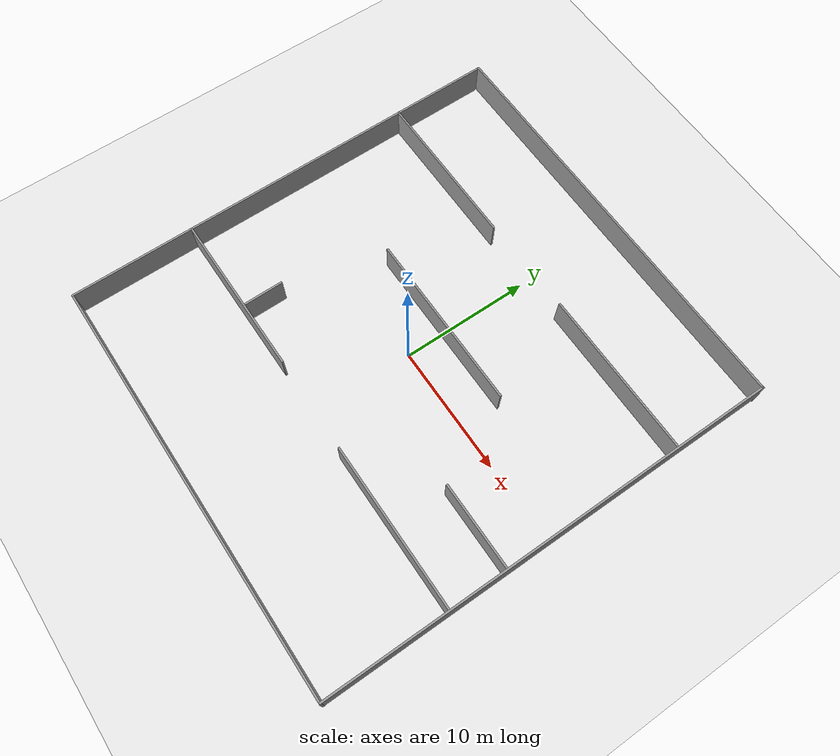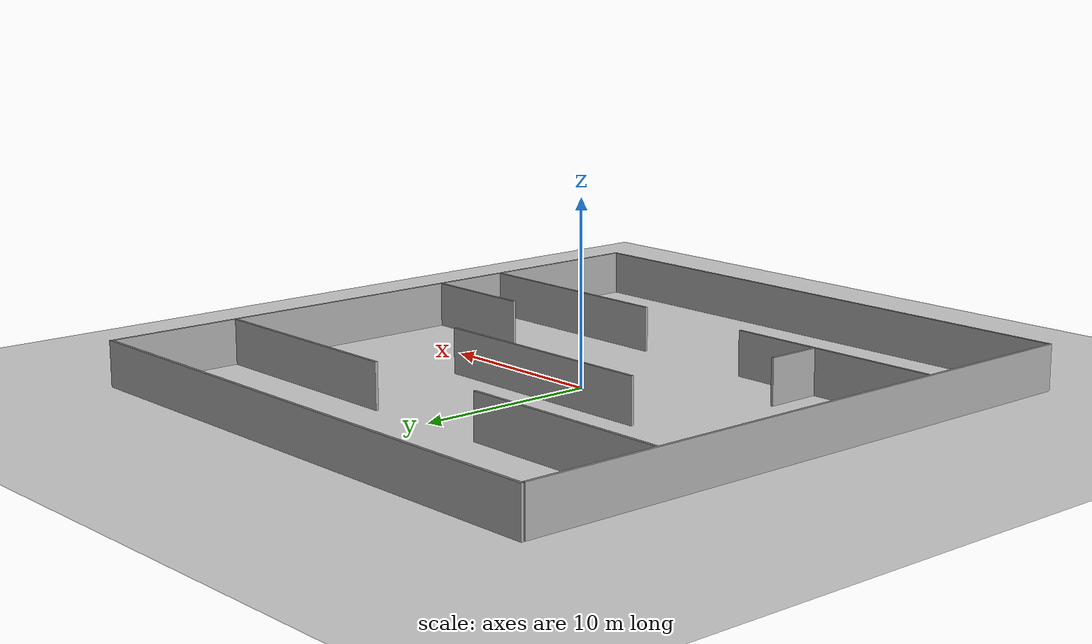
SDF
<sdf version="1.6">
 <world name="default">
  <light name="sun" type="directional">
   <pose>0 0 10 0 -0 0</pose>
   <diffuse>0.8 0.8 0.8 1</diffuse>
   <specular>0.1 0.1 0.1 1</specular>
   <attenuation>
    <range>1000</range>
    <constant>0.9</constant>
    <linear>0.01</linear>
    <quadratic>0.001</quadratic>
   </attenuation>
   <direction>-0.5 0.5 -1</direction>
   <spot><inner_angle>0</inner_angle><outer_angle>0</outer_angle><falloff>0</falloff></spot>
  </light>
  <model name="ground_plane">
   <static>1</static>
   <link name="link">
    <collision name="collision">
     <geometry><plane><normal>0 0 1</normal><size>100 100</size></plane></geometry>
     <surface><friction><ode><mu>100</mu><mu2>50</mu2></ode></friction></surface>
    </collision>
    <visual name="visual">
     <cast_shadows>0</cast_shadows>
     <geometry><plane><normal>0 0 1</normal><size>100 100</size></plane></geometry>
     <material>
      <script><uri>file://media/materials/scripts/gazebo.material</uri><name>Gazebo/White</name></script>
     </material>
    </visual>
   </link>
  </model>
  <gravity>0 0 -9.8</gravity>
  <magnetic_field>6e-06 2.3e-05 -4.2e-05</magnetic_field>
  <atmosphere type="adiabatic"/>
  <physics name="default_physics" default="0" type="ode">
   <max_step_size>0.001</max_step_size>
   <real_time_factor>1</real_time_factor>
   <real_time_update_rate>1000</real_time_update_rate>
  </physics>
  <scene><ambient>0.4 0.4 0.4 1</ambient><background>0.7 0.7 0.7 1</background><shadows>1</shadows></scene>
  <spherical_coordinates>
   <surface_model>EARTH_WGS84</surface_model>
   <latitude_deg>0</latitude_deg>
   <longitude_deg>0</longitude_deg>
   <elevation>0</elevation>
   <heading_deg>0</heading_deg>
  </spherical_coordinates>
  <model name="wide_maze">
   <link name="Wall_0">
    <pose>-0.014607 17.9359 0 0 -0 0</pose>
    <inertial>
     <inertia><ixx>0</ixx><ixy>0</ixy><ixz>0</ixz><iyy>0</iyy><iyz>0</iyz><izz>0</izz></inertia>
     <mass>0</mass>
    </inertial>
    <visual name="Wall_0_Visual">
     <pose>0 0 1.25 0 -0 0</pose>
     <geometry><box><size>32.923 0.15 2.5</size></box></geometry>
     <material>
      <script><uri>file://media/materials/scripts/gazebo.material</uri><name>Gazebo/Grey</name></script>
      <ambient>1 1 1 1</ambient>
      <shader type="pixel"/>
     </material>
    </visual>
    <collision name="Wall_0_Collision">
     <pose>0 0 1.25 0 -0 0</pose>
     <geometry><box><size>32.923 0.15 2.5</size></box></geometry>
     <surface>
      <friction>
       <ode><mu>1</mu><mu2>1</mu2><fdir1>0 0 0</fdir1><slip1>0</slip1><slip2>0</slip2></ode>
       <torsional>
        <coefficient>1</coefficient>
        <patch_radius>0</patch_radius>
        <surface_radius>0</surface_radius>
        <use_patch_radius>1</use_patch_radius>
        <ode><slip>0</slip></ode>
       </torsional>
      </friction>
      <bounce><restitution_coefficient>0</restitution_coefficient><threshold>1e+06</threshold></bounce>
      <contact>
       <collide_without_contact>0</collide_without_contact>
       <collide_without_contact_bitmask>1</collide_without_contact_bitmask>
       <collide_bitmask>1</collide_bitmask>
       <ode>
        <soft_cfm>0</soft_cfm>
        <soft_erp>0.2</soft_erp>
        <kp>1e+13</kp>
        <kd>1</kd>
        <max_vel>0.01</max_vel>
        <min_depth>0</min_depth>
       </ode>
       <bullet>
        <split_impulse>1</split_impulse>
        <split_impulse_penetration_threshold>-0.01</split_impulse_penetration_threshold>
        <soft_cfm>0</soft_cfm>
        <soft_erp>0.2</soft_erp>
        <kp>1e+13</kp>
        <kd>1</kd>
       </bullet>
      </contact>
     </surface>
    </collision>
   </link>
   <link name="Wall_1">
    <pose>16.3233 0.193877 0 0 0 -1.5708</pose>
    <inertial>
     <inertia><ixx>0</ixx><ixy>0</ixy><ixz>0</ixz><iyy>0</iyy><iyz>0</iyz><izz>0</izz></inertia>
     <mass>0</mass>
    </inertial>
    <visual name="Wall_1_Visual">
     <pose>0 0 1.25 0 -0 0</pose>
     <geometry><box><size>35.5681 0.15 2.5</size></box></geometry>
     <material>
      <script><uri>file://media/materials/scripts/gazebo.material</uri><name>Gazebo/Grey</name></script>
      <ambient>1 1 1 1</ambient>
      <shader type="pixel"/>
     </material>
    </visual>
    <collision name="Wall_1_Collision">
     <pose>0 0 1.25 0 -0 0</pose>
     <geometry><box><size>35.5681 0.15 2.5</size></box></geometry>
     <surface>
      <friction>
       <ode><mu>1</mu><mu2>1</mu2><fdir1>0 0 0</fdir1><slip1>0</slip1><slip2>0</slip2></ode>
       <torsional>
        <coefficient>1</coefficient>
        <patch_radius>0</patch_radius>
        <surface_radius>0</surface_radius>
        <use_patch_radius>1</use_patch_radius>
        <ode><slip>0</slip></ode>
       </torsional>
      </friction>
      <bounce><restitution_coefficient>0</restitution_coefficient><threshold>1e+06</threshold></bounce>
      <contact>
       <collide_without_contact>0</collide_without_contact>
       <collide_without_contact_bitmask>1</collide_without_contact_bitmask>
       <collide_bitmask>1</collide_bitmask>
       <ode>
        <soft_cfm>0</soft_cfm>
        <soft_erp>0.2</soft_erp>
        <kp>1e+13</kp>
        <kd>1</kd>
        <max_vel>0.01</max_vel>
        <min_depth>0</min_depth>
       </ode>
       <bullet>
        <split_impulse>1</split_impulse>
        <split_impulse_penetration_threshold>-0.01</split_impulse_penetration_threshold>
        <soft_cfm>0</soft_cfm>
        <soft_erp>0.2</soft_erp>
        <kp>1e+13</kp>
        <kd>1</kd>
       </bullet>
      </contact>
     </surface>
    </collision>
   </link>
   <link name="Wall_15">
    <pose>-0.069834 2.91187 0 0 -0 0</pose>
    <visual name="Wall_15_Visual">
     <pose>0 0 1.25 0 -0 0</pose>
     <geometry><box><size>13.75 0.15 2.5</size></box></geometry>
     <material>
      <script><uri>file://media/materials/scripts/gazebo.material</uri><name>Gazebo/Grey</name></script>
      <ambient>1 1 1 1</ambient>
      <shader type="pixel"/>
     </material>
    </visual>
    <collision name="Wall_15_Collision">
     <pose>0 0 1.25 0 -0 0</pose>
     <geometry><box><size>13.75 0.15 2.5</size></box></geometry>
     <surface>
      <friction>
       <ode><mu>1</mu><mu2>1</mu2><fdir1>0 0 0</fdir1><slip1>0</slip1><slip2>0</slip2></ode>
       <torsional>
        <coefficient>1</coefficient>
        <patch_radius>0</patch_radius>
        <surface_radius>0</surface_radius>
        <use_patch_radius>1</use_patch_radius>
        <ode><slip>0</slip></ode>
       </torsional>
      </friction>
      <bounce><restitution_coefficient>0</restitution_coefficient><threshold>1e+06</threshold></bounce>
      <contact>
       <collide_without_contact>0</collide_without_contact>
       <collide_without_contact_bitmask>1</collide_without_contact_bitmask>
       <collide_bitmask>1</collide_bitmask>
       <ode>
        <soft_cfm>0</soft_cfm>
        <soft_erp>0.2</soft_erp>
        <kp>1e+13</kp>
        <kd>1</kd>
        <max_vel>0.01</max_vel>
        <min_depth>0</min_depth>
       </ode>
       <bullet>
        <split_impulse>1</split_impulse>
        <split_impulse_penetration_threshold>-0.01</split_impulse_penetration_threshold>
        <soft_cfm>0</soft_cfm>
        <soft_erp>0.2</soft_erp>
        <kp>1e+13</kp>
        <kd>1</kd>
       </bullet>
      </contact>
     </surface>
    </collision>
   </link>
   <link name="Wall_15_clone_0">
    <pose>12.9862 -3.61834 0 0 -0 0</pose>
    <inertial>
     <inertia><ixx>0</ixx><ixy>0</ixy><ixz>0</ixz><iyy>0</iyy><iyz>0</iyz><izz>0</izz></inertia>
     <mass>0</mass>
    </inertial>
    <visual name="Wall_15_Visual">
     <pose>0 0 1.25 0 -0 0</pose>
     <geometry><box><size>6.57264 0.15 2.5</size></box></geometry>
     <material>
      <script><uri>file://media/materials/scripts/gazebo.material</uri><name>Gazebo/Grey</name></script>
      <ambient>1 1 1 1</ambient>
      <shader type="pixel"/>
     </material>
    </visual>
    <collision name="Wall_15_Collision">
     <pose>0 0 1.25 0 -0 0</pose>
     <geometry><box><size>6.57264 0.15 2.5</size></box></geometry>
     <surface>
      <friction>
       <ode><mu>1</mu><mu2>1</mu2><fdir1>0 0 0</fdir1><slip1>0</slip1><slip2>0</slip2></ode>
       <torsional>
        <coefficient>1</coefficient>
        <patch_radius>0</patch_radius>
        <surface_radius>0</surface_radius>
        <use_patch_radius>1</use_patch_radius>
        <ode><slip>0</slip></ode>
       </torsional>
      </friction>
      <bounce><restitution_coefficient>0</restitution_coefficient><threshold>1e+06</threshold></bounce>
      <contact>
       <collide_without_contact>0</collide_without_contact>
       <collide_without_contact_bitmask>1</collide_without_contact_bitmask>
       <collide_bitmask>1</collide_bitmask>
       <ode>
        <soft_cfm>0</soft_cfm>
        <soft_erp>0.2</soft_erp>
        <kp>1e+13</kp>
        <kd>1</kd>
        <max_vel>0.01</max_vel>
        <min_depth>0</min_depth>
       </ode>
       <bullet>
        <split_impulse>1</split_impulse>
        <split_impulse_penetration_threshold>-0.01</split_impulse_penetration_threshold>
        <soft_cfm>0</soft_cfm>
        <soft_erp>0.2</soft_erp>
        <kp>1e+13</kp>
        <kd>1</kd>
       </bullet>
      </contact>
     </surface>
    </collision>
   </link>
   <link name="Wall_15_clone_0_clone">
    <pose>-8.93928 -6.35372 0 0 0 -1.56488</pose>
    <inertial>
     <inertia><ixx>0</ixx><ixy>0</ixy><ixz>0</ixz><iyy>0</iyy><iyz>0</iyz><izz>0</izz></inertia>
     <mass>0</mass>
    </inertial>
    <visual name="Wall_15_Visual">
     <pose>0 0 1.25 0 -0 0</pose>
     <geometry><box><size>3.16137 0.15 2.5</size></box></geometry>
     <material>
      <script><uri>file://media/materials/scripts/gazebo.material</uri><name>Gazebo/Grey</name></script>
      <ambient>1 1 1 1</ambient>
      <shader type="pixel"/>
     </material>
    </visual>
    <collision name="Wall_15_Collision">
     <pose>0 0 1.25 0 -0 0</pose>
     <geometry><box><size>3.16137 0.15 2.5</size></box></geometry>
     <surface>
      <friction>
       <ode><mu>1</mu><mu2>1</mu2><fdir1>0 0 0</fdir1><slip1>0</slip1><slip2>0</slip2></ode>
       <torsional>
        <coefficient>1</coefficient>
        <patch_radius>0</patch_radius>
        <surface_radius>0</surface_radius>
        <use_patch_radius>1</use_patch_radius>
        <ode><slip>0</slip></ode>
       </torsional>
      </friction>
      <bounce><restitution_coefficient>0</restitution_coefficient><threshold>1e+06</threshold></bounce>
      <contact>
       <collide_without_contact>0</collide_without_contact>
       <collide_without_contact_bitmask>1</collide_without_contact_bitmask>
       <collide_bitmask>1</collide_bitmask>
       <ode>
        <soft_cfm>0</soft_cfm>
        <soft_erp>0.2</soft_erp>
        <kp>1e+13</kp>
        <kd>1</kd>
        <max_vel>0.01</max_vel>
        <min_depth>0</min_depth>
       </ode>
       <bullet>
        <split_impulse>1</split_impulse>
        <split_impulse_penetration_threshold>-0.01</split_impulse_penetration_threshold>
        <soft_cfm>0</soft_cfm>
        <soft_erp>0.2</soft_erp>
        <kp>1e+13</kp>
        <kd>1</kd>
       </bullet>
      </contact>
     </surface>
    </collision>
   </link>
   <link name="Wall_2">
    <pose>-0.006827 -17.5416 0 0 -0 3.14159</pose>
    <inertial>
     <inertia><ixx>0</ixx><ixy>0</ixy><ixz>0</ixz><iyy>0</iyy><iyz>0</iyz><izz>0</izz></inertia>
     <mass>0</mass>
    </inertial>
    <visual name="Wall_2_Visual">
     <pose>0 0 1.25 0 -0 0</pose>
     <geometry><box><size>32.8434 0.15 2.5</size></box></geometry>
     <material>
      <script><uri>file://media/materials/scripts/gazebo.material</uri><name>Gazebo/Grey</name></script>
      <ambient>1 1 1 1</ambient>
      <shader type="pixel"/>
     </material>
    </visual>
    <collision name="Wall_2_Collision">
     <pose>0 0 1.25 0 -0 0</pose>
     <geometry><box><size>32.8434 0.15 2.5</size></box></geometry>
     <surface>
      <friction>
       <ode><mu>1</mu><mu2>1</mu2><fdir1>0 0 0</fdir1><slip1>0</slip1><slip2>0</slip2></ode>
       <torsional>
        <coefficient>1</coefficient>
        <patch_radius>0</patch_radius>
        <surface_radius>0</surface_radius>
        <use_patch_radius>1</use_patch_radius>
        <ode><slip>0</slip></ode>
       </torsional>
      </friction>
      <bounce><restitution_coefficient>0</restitution_coefficient><threshold>1e+06</threshold></bounce>
      <contact>
       <collide_without_contact>0</collide_without_contact>
       <collide_without_contact_bitmask>1</collide_without_contact_bitmask>
       <collide_bitmask>1</collide_bitmask>
       <ode>
        <soft_cfm>0</soft_cfm>
        <soft_erp>0.2</soft_erp>
        <kp>1e+13</kp>
        <kd>1</kd>
        <max_vel>0.01</max_vel>
        <min_depth>0</min_depth>
       </ode>
       <bullet>
        <split_impulse>1</split_impulse>
        <split_impulse_penetration_threshold>-0.01</split_impulse_penetration_threshold>
        <soft_cfm>0</soft_cfm>
        <soft_erp>0.2</soft_erp>
        <kp>1e+13</kp>
        <kd>1</kd>
       </bullet>
      </contact>
     </surface>
    </collision>
   </link>
   <link name="Wall_21">
    <pose>-10.2258 10.3071 0 0 -0 3.14159</pose>
    <inertial>
     <inertia><ixx>0</ixx><ixy>0</ixy><ixz>0</ixz><iyy>0</iyy><iyz>0</iyz><izz>0</izz></inertia>
     <mass>0</mass>
    </inertial>
    <visual name="Wall_21_Visual">
     <pose>0 0 1.25 0 -0 0</pose>
     <geometry><box><size>12.477 0.15 2.5</size></box></geometry>
     <material>
      <script><uri>file://media/materials/scripts/gazebo.material</uri><name>Gazebo/Grey</name></script>
      <ambient>1 1 1 1</ambient>
      <shader type="pixel"/>
     </material>
    </visual>
    <collision name="Wall_21_Collision">
     <pose>0 0 1.25 0 -0 0</pose>
     <geometry><box><size>12.477 0.15 2.5</size></box></geometry>
     <surface>
      <friction>
       <ode><mu>1</mu><mu2>1</mu2><fdir1>0 0 0</fdir1><slip1>0</slip1><slip2>0</slip2></ode>
       <torsional>
        <coefficient>1</coefficient>
        <patch_radius>0</patch_radius>
        <surface_radius>0</surface_radius>
        <use_patch_radius>1</use_patch_radius>
        <ode><slip>0</slip></ode>
       </torsional>
      </friction>
      <bounce><restitution_coefficient>0</restitution_coefficient><threshold>1e+06</threshold></bounce>
      <contact>
       <collide_without_contact>0</collide_without_contact>
       <collide_without_contact_bitmask>1</collide_without_contact_bitmask>
       <collide_bitmask>1</collide_bitmask>
       <ode>
        <soft_cfm>0</soft_cfm>
        <soft_erp>0.2</soft_erp>
        <kp>1e+13</kp>
        <kd>1</kd>
        <max_vel>0.01</max_vel>
        <min_depth>0</min_depth>
       </ode>
       <bullet>
        <split_impulse>1</split_impulse>
        <split_impulse_penetration_threshold>-0.01</split_impulse_penetration_threshold>
        <soft_cfm>0</soft_cfm>
        <soft_erp>0.2</soft_erp>
        <kp>1e+13</kp>
        <kd>1</kd>
       </bullet>
      </contact>
     </surface>
    </collision>
   </link>
   <link name="Wall_25">
    <pose>9.99476 -8.07615 0 0 -0 3.14159</pose>
    <inertial>
     <inertia><ixx>0</ixx><ixy>0</ixy><ixz>0</ixz><iyy>0</iyy><iyz>0</iyz><izz>0</izz></inertia>
     <mass>0</mass>
    </inertial>
    <visual name="Wall_25_Visual">
     <pose>0 0 1.25 0 -0 0</pose>
     <geometry><box><size>12.7392 0.15 2.5</size></box></geometry>
     <material>
      <script><uri>file://media/materials/scripts/gazebo.material</uri><name>Gazebo/Grey</name></script>
      <ambient>1 1 1 1</ambient>
      <shader type="pixel"/>
     </material>
    </visual>
    <collision name="Wall_25_Collision">
     <pose>0 0 1.25 0 -0 0</pose>
     <geometry><box><size>12.7392 0.15 2.5</size></box></geometry>
     <surface>
      <friction>
       <ode><mu>1</mu><mu2>1</mu2><fdir1>0 0 0</fdir1><slip1>0</slip1><slip2>0</slip2></ode>
       <torsional>
        <coefficient>1</coefficient>
        <patch_radius>0</patch_radius>
        <surface_radius>0</surface_radius>
        <use_patch_radius>1</use_patch_radius>
        <ode><slip>0</slip></ode>
       </torsional>
      </friction>
      <bounce><restitution_coefficient>0</restitution_coefficient><threshold>1e+06</threshold></bounce>
      <contact>
       <collide_without_contact>0</collide_without_contact>
       <collide_without_contact_bitmask>1</collide_without_contact_bitmask>
       <collide_bitmask>1</collide_bitmask>
       <ode>
        <soft_cfm>0</soft_cfm>
        <soft_erp>0.2</soft_erp>
        <kp>1e+13</kp>
        <kd>1</kd>
        <max_vel>0.01</max_vel>
        <min_depth>0</min_depth>
       </ode>
       <bullet>
        <split_impulse>1</split_impulse>
        <split_impulse_penetration_threshold>-0.01</split_impulse_penetration_threshold>
        <soft_cfm>0</soft_cfm>
        <soft_erp>0.2</soft_erp>
        <kp>1e+13</kp>
        <kd>1</kd>
       </bullet>
      </contact>
     </surface>
    </collision>
   </link>
   <link name="Wall_25_clone">
    <pose>-10.0341 -7.93675 0 0 -0 3.14159</pose>
    <inertial>
     <inertia><ixx>0</ixx><ixy>0</ixy><ixz>0</ixz><iyy>0</iyy><iyz>0</iyz><izz>0</izz></inertia>
     <mass>0</mass>
    </inertial>
    <visual name="Wall_25_Visual">
     <pose>0 0 1.25 0 -0 0</pose>
     <geometry><box><size>12.7392 0.15 2.5</size></box></geometry>
     <material>
      <script><uri>file://media/materials/scripts/gazebo.material</uri><name>Gazebo/Grey</name></script>
      <ambient>1 1 1 1</ambient>
      <shader type="pixel"/>
     </material>
    </visual>
    <collision name="Wall_25_Collision">
     <pose>0 0 1.25 0 -0 0</pose>
     <geometry><box><size>12.7392 0.15 2.5</size></box></geometry>
     <surface>
      <friction>
       <ode><mu>1</mu><mu2>1</mu2><fdir1>0 0 0</fdir1><slip1>0</slip1><slip2>0</slip2></ode>
       <torsional>
        <coefficient>1</coefficient>
        <patch_radius>0</patch_radius>
        <surface_radius>0</surface_radius>
        <use_patch_radius>1</use_patch_radius>
        <ode><slip>0</slip></ode>
       </torsional>
      </friction>
      <bounce><restitution_coefficient>0</restitution_coefficient><threshold>1e+06</threshold></bounce>
      <contact>
       <collide_without_contact>0</collide_without_contact>
       <collide_without_contact_bitmask>1</collide_without_contact_bitmask>
       <collide_bitmask>1</collide_bitmask>
       <ode>
        <soft_cfm>0</soft_cfm>
        <soft_erp>0.2</soft_erp>
        <kp>1e+13</kp>
        <kd>1</kd>
        <max_vel>0.01</max_vel>
        <min_depth>0</min_depth>
       </ode>
       <bullet>
        <split_impulse>1</split_impulse>
        <split_impulse_penetration_threshold>-0.01</split_impulse_penetration_threshold>
        <soft_cfm>0</soft_cfm>
        <soft_erp>0.2</soft_erp>
        <kp>1e+13</kp>
        <kd>1</kd>
       </bullet>
      </contact>
     </surface>
    </collision>
   </link>
   <link name="Wall_25_clone_0">
    <pose>9.91965 10.4546 0 0 -0 3.14159</pose>
    <inertial>
     <inertia><ixx>0</ixx><ixy>0</ixy><ixz>0</ixz><iyy>0</iyy><iyz>0</iyz><izz>0</izz></inertia>
     <mass>0</mass>
    </inertial>
    <visual name="Wall_25_Visual">
     <pose>0 0 1.25 0 -0 0</pose>
     <geometry><box><size>12.7392 0.15 2.5</size></box></geometry>
     <material>
      <script><uri>file://media/materials/scripts/gazebo.material</uri><name>Gazebo/Grey</name></script>
      <ambient>1 1 1 1</ambient>
      <shader type="pixel"/>
     </material>
    </visual>
    <collision name="Wall_25_Collision">
     <pose>0 0 1.25 0 -0 0</pose>
     <geometry><box><size>12.7392 0.15 2.5</size></box></geometry>
     <surface>
      <friction>
       <ode><mu>1</mu><mu2>1</mu2><fdir1>0 0 0</fdir1><slip1>0</slip1><slip2>0</slip2></ode>
       <torsional>
        <coefficient>1</coefficient>
        <patch_radius>0</patch_radius>
        <surface_radius>0</surface_radius>
        <use_patch_radius>1</use_patch_radius>
        <ode><slip>0</slip></ode>
       </torsional>
      </friction>
      <bounce><restitution_coefficient>0</restitution_coefficient><threshold>1e+06</threshold></bounce>
      <contact>
       <collide_without_contact>0</collide_without_contact>
       <collide_without_contact_bitmask>1</collide_without_contact_bitmask>
       <collide_bitmask>1</collide_bitmask>
       <ode>
        <soft_cfm>0</soft_cfm>
        <soft_erp>0.2</soft_erp>
        <kp>1e+13</kp>
        <kd>1</kd>
        <max_vel>0.01</max_vel>
        <min_depth>0</min_depth>
       </ode>
       <bullet>
        <split_impulse>1</split_impulse>
        <split_impulse_penetration_threshold>-0.01</split_impulse_penetration_threshold>
        <soft_cfm>0</soft_cfm>
        <soft_erp>0.2</soft_erp>
        <kp>1e+13</kp>
        <kd>1</kd>
       </bullet>
      </contact>
     </surface>
    </collision>
   </link>
   <link name="Wall_3">
    <pose>-16.4033 0.100668 0 0 -0 1.5708</pose>
    <inertial>
     <inertia><ixx>0</ixx><ixy>0</ixy><ixz>0</ixz><iyy>0</iyy><iyz>0</iyz><izz>0</izz></inertia>
     <mass>0</mass>
    </inertial>
    <visual name="Wall_3_Visual">
     <pose>0 0 1.25 0 -0 0</pose>
     <geometry><box><size>35.3939 0.15 2.5</size></box></geometry>
     <material>
      <script><uri>file://media/materials/scripts/gazebo.material</uri><name>Gazebo/Grey</name></script>
      <ambient>1 1 1 1</ambient>
      <shader type="pixel"/>
     </material>
    </visual>
    <collision name="Wall_3_Collision">
     <pose>0 0 1.25 0 -0 0</pose>
     <geometry><box><size>35.3939 0.15 2.5</size></box></geometry>
     <surface>
      <friction>
       <ode><mu>1</mu><mu2>1</mu2><fdir1>0 0 0</fdir1><slip1>0</slip1><slip2>0</slip2></ode>
       <torsional>
        <coefficient>1</coefficient>
        <patch_radius>0</patch_radius>
        <surface_radius>0</surface_radius>
        <use_patch_radius>1</use_patch_radius>
        <ode><slip>0</slip></ode>
       </torsional>
      </friction>
      <bounce><restitution_coefficient>0</restitution_coefficient><threshold>1e+06</threshold></bounce>
      <contact>
       <collide_without_contact>0</collide_without_contact>
       <collide_without_contact_bitmask>1</collide_without_contact_bitmask>
       <collide_bitmask>1</collide_bitmask>
       <ode>
        <soft_cfm>0</soft_cfm>
        <soft_erp>0.2</soft_erp>
        <kp>1e+13</kp>
        <kd>1</kd>
        <max_vel>0.01</max_vel>
        <min_depth>0</min_depth>
       </ode>
       <bullet>
        <split_impulse>1</split_impulse>
        <split_impulse_penetration_threshold>-0.01</split_impulse_penetration_threshold>
        <soft_cfm>0</soft_cfm>
        <soft_erp>0.2</soft_erp>
        <kp>1e+13</kp>
        <kd>1</kd>
       </bullet>
      </contact>
     </surface>
    </collision>
   </link>
   <static>1</static>
   <pose>0.006807 0 0 0 -0 0</pose>
  </model>
 </world>
</sdf>
